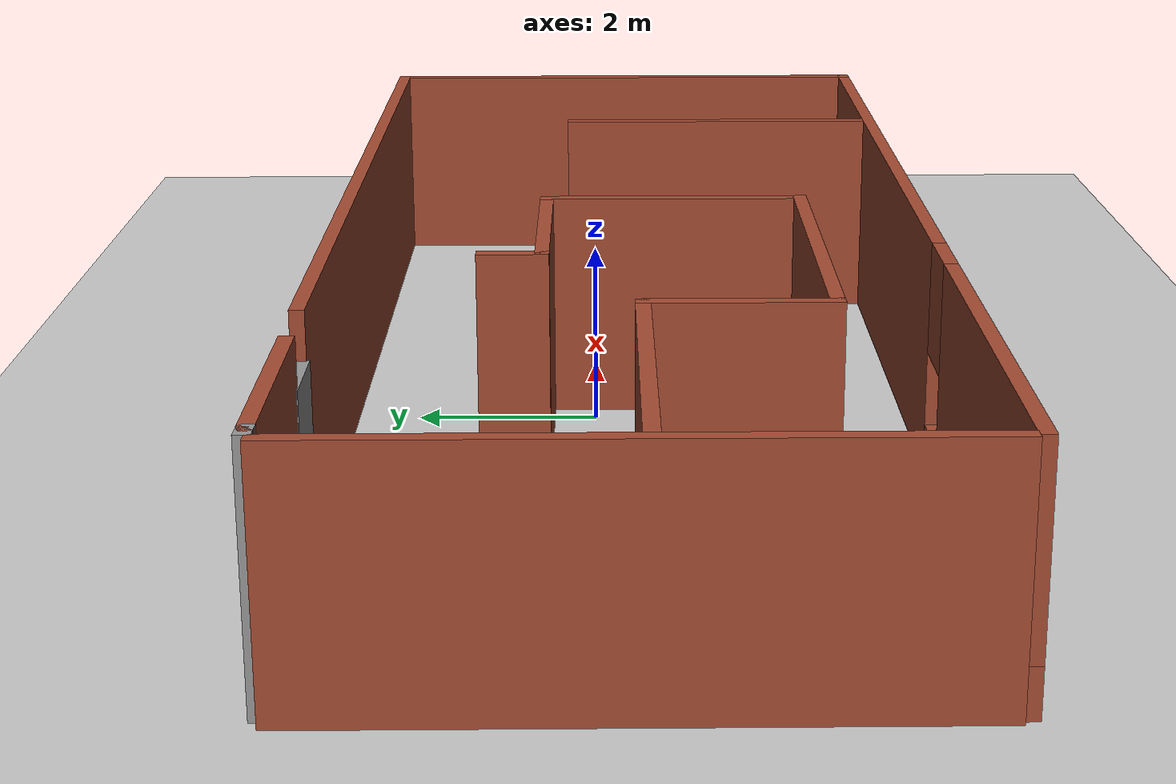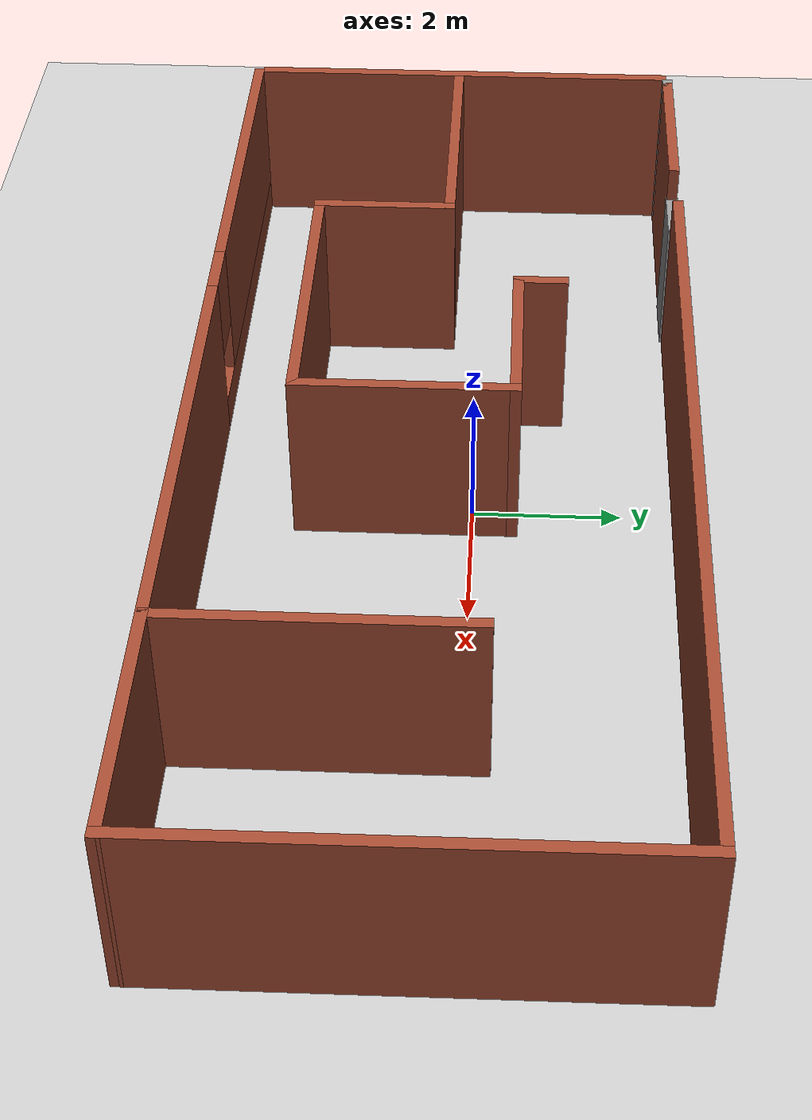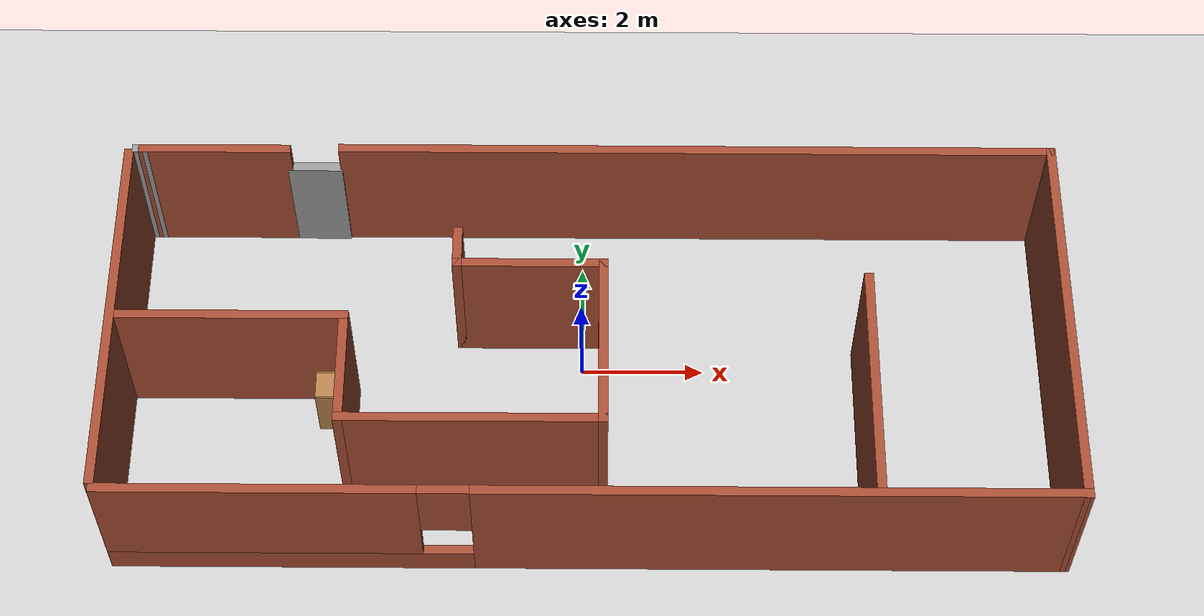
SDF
<sdf version="1.6">
 <world name="default">
  <light name="sun" type="directional">
   <pose>0 0 10 0 -0 0</pose>
   <diffuse>0.8 0.8 0.8 1</diffuse>
   <specular>0.2 0.2 0.2 1</specular>
   <attenuation>
    <range>1000</range>
    <constant>0.9</constant>
    <linear>0.01</linear>
    <quadratic>0.001</quadratic>
   </attenuation>
   <direction>-0.5 0.1 -0.9</direction>
  </light>
  <model name="ground_plane">
   <static>1</static>
   <link name="link">
    <collision name="collision">
     <geometry><plane><normal>0 0 1</normal><size>100 100</size></plane></geometry>
     <surface>
      <contact><collide_bitmask>65535</collide_bitmask></contact>
      <friction><ode><mu>100</mu><mu2>50</mu2></ode></friction>
     </surface>
    </collision>
    <visual name="visual">
     <cast_shadows>0</cast_shadows>
     <geometry><plane><normal>0 0 1</normal><size>100 100</size></plane></geometry>
     <material>
      <script><uri>file://media/materials/scripts/gazebo.material</uri><name>Gazebo/Grey</name></script>
     </material>
    </visual>
   </link>
  </model>
  <gravity>0 0 -9.8</gravity>
  <magnetic_field>6e-06 2.3e-05 -4.2e-05</magnetic_field>
  <atmosphere type="adiabatic"/>
  <physics name="default_physics" default="0" type="ode">
   <max_step_size>0.001</max_step_size>
   <real_time_factor>1</real_time_factor>
   <real_time_update_rate>1000</real_time_update_rate>
  </physics>
  <scene><ambient>0.4 0.4 0.4 1</ambient><background>0.7 0.7 0.7 1</background><shadows>1</shadows></scene>
  <spherical_coordinates>
   <surface_model>EARTH_WGS84</surface_model>
   <latitude_deg>0</latitude_deg>
   <longitude_deg>0</longitude_deg>
   <elevation>0</elevation>
   <heading_deg>0</heading_deg>
  </spherical_coordinates>
  <model name="simplebuilding">
   <pose>0.128 -0.40544 0 0 -0 0</pose>
   <link name="Door_0">
    <collision name="Door_0_Collision">
     <geometry><box><size>0.9 0.17 2</size></box></geometry>
     <pose>0 0 1 0 -0 0</pose>
    </collision>
    <visual name="Door_0_Visual">
     <pose>0 0 1 0 -0 0</pose>
     <geometry><box><size>0.9 0.17 2</size></box></geometry>
     <material>
      <script><uri>file://media/materials/scripts/gazebo.material</uri><name>Gazebo/Grey</name></script>
     </material>
    </visual>
    <pose>-4.5614 3.16525 0 0 -0 0</pose>
   </link>
   <link name="Wall_13">
    <collision name="Wall_13_Collision">
     <geometry><box><size>0.25 0.15 2.5</size></box></geometry>
     <pose>0 0 1.25 0 -0 0</pose>
    </collision>
    <visual name="Wall_13_Visual">
     <pose>0 0 1.25 0 -0 0</pose>
     <geometry><box><size>0.25 0.15 2.5</size></box></geometry>
     <material>
      <script><uri>file://media/materials/scripts/gazebo.material</uri><name>Gazebo/Grey</name></script>
      <ambient>1 1 1 1</ambient>
     </material>
     <meta><layer>0</layer></meta>
    </visual>
    <pose>-7.40376 3.16516 0 0 0 -0.001698</pose>
   </link>
   <link name="Wall_17">
    <collision name="Wall_17_Collision">
     <geometry><box><size>6.25 0.15 2.5</size></box></geometry>
     <pose>0 0 1.25 0 -0 0</pose>
    </collision>
    <visual name="Wall_17_Visual">
     <pose>0 0 1.25 0 -0 0</pose>
     <geometry><box><size>6.25 0.15 2.5</size></box></geometry>
     <material>
      <script><uri>file://media/materials/scripts/gazebo.material</uri><name>Gazebo/Bricks</name></script>
      <ambient>1 1 1 1</ambient>
     </material>
     <meta><layer>0</layer></meta>
    </visual>
    <pose>-7.57862 0.026077 0 0 -0 1.5708</pose>
   </link>
   <link name="Wall_19">
    <collision name="Wall_19_Collision">
     <geometry><box><size>3.75 0.15 2.5</size></box></geometry>
     <pose>0 0 1.25 0 -0 0</pose>
    </collision>
    <visual name="Wall_19_Visual">
     <pose>0 0 1.25 0 -0 0</pose>
     <geometry><box><size>3.75 0.15 2.5</size></box></geometry>
     <material>
      <script><uri>file://media/materials/scripts/gazebo.material</uri><name>Gazebo/Bricks</name></script>
      <ambient>1 1 1 1</ambient>
     </material>
     <meta><layer>0</layer></meta>
    </visual>
    <pose>-5.67762 -0.052923 0 0 -0 3.14159</pose>
   </link>
   <link name="Wall_2">
    <collision name="Wall_2_Collision">
     <geometry><box><size>11.747 0.15 2.5</size></box></geometry>
     <pose>0 0 1.25 0 -0 0</pose>
    </collision>
    <visual name="Wall_2_Visual">
     <pose>0 0 1.25 0 -0 0</pose>
     <geometry><box><size>11.747 0.15 2.5</size></box></geometry>
     <material>
      <script><uri>file://media/materials/scripts/gazebo.material</uri><name>Gazebo/Bricks</name></script>
      <ambient>0.760784 0.662745 0.627451 1</ambient>
     </material>
     <meta><layer>0</layer></meta>
    </visual>
    <pose>1.73328 3.17508 0 0 0 -0.001725</pose>
   </link>
   <link name="Wall_21">
    <collision name="Wall_21_Collision">
     <geometry><box><size>2 0.15 2.5</size></box></geometry>
     <pose>0 0 1.25 0 -0 0</pose>
    </collision>
    <visual name="Wall_21_Visual">
     <pose>0 0 1.25 0 -0 0</pose>
     <geometry><box><size>2 0.15 2.5</size></box></geometry>
     <material>
      <script><uri>file://media/materials/scripts/gazebo.material</uri><name>Gazebo/Bricks</name></script>
      <ambient>1 1 1 1</ambient>
     </material>
     <meta><layer>0</layer></meta>
    </visual>
    <pose>-3.87762 -0.977923 0 0 0 -1.5708</pose>
   </link>
   <link name="Wall_22">
    <collision name="Wall_22_Collision">
     <geometry><box><size>4.25 0.15 2.5</size></box></geometry>
     <pose>0 0 1.25 0 -0 0</pose>
    </collision>
    <visual name="Wall_22_Visual">
     <pose>0 0 1.25 0 -0 0</pose>
     <geometry><box><size>4.25 0.15 2.5</size></box></geometry>
     <material>
      <script><uri>file://media/materials/scripts/gazebo.material</uri><name>Gazebo/Bricks</name></script>
      <ambient>1 1 1 1</ambient>
     </material>
     <meta><layer>0</layer></meta>
    </visual>
    <pose>-1.82762 -1.90292 0 0 -0 0</pose>
   </link>
   <link name="Wall_23">
    <collision name="Wall_23_Collision">
     <geometry><box><size>3 0.15 2.5</size></box></geometry>
     <pose>0 0 1.25 0 -0 0</pose>
    </collision>
    <visual name="Wall_23_Visual">
     <pose>0 0 1.25 0 -0 0</pose>
     <geometry><box><size>3 0.15 2.5</size></box></geometry>
     <material>
      <script><uri>file://media/materials/scripts/gazebo.material</uri><name>Gazebo/Bricks</name></script>
      <ambient>1 1 1 1</ambient>
     </material>
     <meta><layer>0</layer></meta>
    </visual>
    <pose>0.222382 -0.477923 0 0 -0 1.5708</pose>
   </link>
   <link name="Wall_24">
    <collision name="Wall_24_Collision">
     <geometry><box><size>2.5 0.15 2.5</size></box></geometry>
     <pose>0 0 1.25 0 -0 0</pose>
    </collision>
    <visual name="Wall_24_Visual">
     <pose>0 0 1.25 0 -0 0</pose>
     <geometry><box><size>2.5 0.15 2.5</size></box></geometry>
     <material>
      <script><uri>file://media/materials/scripts/gazebo.material</uri><name>Gazebo/Bricks</name></script>
      <ambient>1 1 1 1</ambient>
     </material>
     <meta><layer>0</layer></meta>
    </visual>
    <pose>-0.952618 0.947077 0 0 -0 3.14159</pose>
   </link>
   <link name="Wall_25">
    <collision name="Wall_25_Collision">
     <geometry><box><size>0.75 0.15 2.5</size></box></geometry>
     <pose>0 0 1.25 0 -0 0</pose>
    </collision>
    <visual name="Wall_25_Visual">
     <pose>0 0 1.25 0 -0 0</pose>
     <geometry><box><size>0.75 0.15 2.5</size></box></geometry>
     <material>
      <script><uri>file://media/materials/scripts/gazebo.material</uri><name>Gazebo/Bricks</name></script>
      <ambient>1 1 1 1</ambient>
     </material>
     <meta><layer>0</layer></meta>
    </visual>
    <pose>-2.12762 1.24708 0 0 -0 1.5708</pose>
   </link>
   <link name="Wall_27">
    <collision name="Wall_27_Collision">
     <geometry><box><size>4 0.15 2.5</size></box></geometry>
     <pose>0 0 1.25 0 -0 0</pose>
    </collision>
    <visual name="Wall_27_Visual">
     <pose>0 0 1.25 0 -0 0</pose>
     <geometry><box><size>4 0.15 2.5</size></box></geometry>
     <material>
      <script><uri>file://media/materials/scripts/gazebo.material</uri><name>Gazebo/Bricks</name></script>
      <ambient>1 1 1 1</ambient>
     </material>
     <meta><layer>0</layer></meta>
    </visual>
    <pose>4.44938 -1.23392 0 0 0 -1.5708</pose>
   </link>
   <link name="Wall_3">
    <collision name="Wall_3_Collision">
     <geometry><box><size>6.50013 0.15 2.5</size></box></geometry>
     <pose>0 0 1.25 0 -0 0</pose>
    </collision>
    <visual name="Wall_3_Visual">
     <pose>0 0 1.25 0 -0 0</pose>
     <geometry><box><size>6.50013 0.15 2.5</size></box></geometry>
     <material>
      <script><uri>file://media/materials/scripts/gazebo.material</uri><name>Gazebo/Bricks</name></script>
      <ambient>1 1 1 1</ambient>
     </material>
     <meta><layer>0</layer></meta>
    </visual>
    <pose>7.56838 -0.009923 0 0 0 -1.56765</pose>
   </link>
   <link name="Wall_4">
    <pose>0.029882 -3.17492 0 0 -0 3.14027</pose>
    <visual name="Wall_4_Visual_0">
     <pose>-2.89481 0 1.25 0 -0 0</pose>
     <geometry><box><size>9.4571 0.15 2.5</size></box></geometry>
     <material>
      <script><uri>file://media/materials/scripts/gazebo.material</uri><name>Gazebo/Bricks</name></script>
      <ambient>1 1 1 1</ambient>
     </material>
     <meta><layer>0</layer></meta>
    </visual>
    <collision name="Wall_4_Collision_0">
     <geometry><box><size>9.4571 0.15 2.5</size></box></geometry>
     <pose>-2.89481 0 1.25 0 -0 0</pose>
    </collision>
    <visual name="Wall_4_Visual_1">
     <pose>4.72855 0 0.25 0 -0 0</pose>
     <geometry><box><size>5.78962 0.15 0.5</size></box></geometry>
     <material>
      <script><uri>file://media/materials/scripts/gazebo.material</uri><name>Gazebo/Bricks</name></script>
      <ambient>1 1 1 1</ambient>
     </material>
     <meta><layer>0</layer></meta>
    </visual>
    <collision name="Wall_4_Collision_1">
     <geometry><box><size>5.78962 0.15 0.5</size></box></geometry>
     <pose>4.72855 0 0.25 0 -0 0</pose>
    </collision>
    <visual name="Wall_4_Visual_2">
     <pose>5.12855 0 1.5 0 -0 0</pose>
     <geometry><box><size>4.98962 0.15 2</size></box></geometry>
     <material>
      <script><uri>file://media/materials/scripts/gazebo.material</uri><name>Gazebo/Bricks</name></script>
      <ambient>1 1 1 1</ambient>
     </material>
     <meta><layer>0</layer></meta>
    </visual>
    <collision name="Wall_4_Collision_2">
     <geometry><box><size>4.98962 0.15 2</size></box></geometry>
     <pose>5.12855 0 1.5 0 -0 0</pose>
    </collision>
    <visual name="Wall_4_Visual_3">
     <pose>2.23374 0 1.9 0 -0 0</pose>
     <geometry><box><size>0.8 0.15 1.2</size></box></geometry>
     <material>
      <script><uri>file://media/materials/scripts/gazebo.material</uri><name>Gazebo/Bricks</name></script>
      <ambient>1 1 1 1</ambient>
     </material>
     <meta><layer>0</layer></meta>
    </visual>
    <collision name="Wall_4_Collision_3">
     <geometry><box><size>0.8 0.15 1.2</size></box></geometry>
     <pose>2.23374 0 1.9 0 -0 0</pose>
    </collision>
   </link>
   <link name="Wall_9">
    <collision name="Wall_9_Collision">
     <geometry><box><size>2.5 0.15 2.5</size></box></geometry>
     <pose>0 0 1.25 0 -0 0</pose>
    </collision>
    <visual name="Wall_9_Visual">
     <pose>0 0 1.25 0 -0 0</pose>
     <geometry><box><size>2.5 0.15 2.5</size></box></geometry>
     <material>
      <script><uri>file://media/materials/scripts/gazebo.material</uri><name>Gazebo/Bricks</name></script>
      <ambient>1 1 1 1</ambient>
     </material>
     <meta><layer>0</layer></meta>
    </visual>
    <pose>-6.17862 3.16508 0 0 -0 3.14159</pose>
   </link>
   <static>1</static>
  </model>
  <model name="my_ball">
   <link name="link">
    <inertial>
     <mass>1</mass>
     <inertia><ixx>0.1</ixx><ixy>0</ixy><ixz>0</ixz><iyy>0.1</iyy><iyz>0</iyz><izz>0.1</izz></inertia>
    </inertial>
    <visual name="visual">
     <geometry><sphere><radius>0.1</radius></sphere></geometry>
     <material>
      <script><name>Gazebo/Grey</name><uri>file://media/materials/scripts/gazebo.material</uri></script>
      <ambient>1 1 1 1</ambient>
      <diffuse>1 1 1 1</diffuse>
      <specular>1 1 1 1</specular>
      <emissive>1 1 1 1</emissive>
      <shader type="vertex"><normal_map>__default__</normal_map></shader>
     </material>
    </visual>
    <collision name="collision">
     <geometry><sphere><radius>0.1</radius></sphere></geometry>
     <surface>
      <friction>
       <ode><mu>1</mu><mu2>1</mu2><fdir1>0 0 0</fdir1><slip1>0</slip1><slip2>0</slip2></ode>
       <torsional>
        <coefficient>1</coefficient>
        <patch_radius>0</patch_radius>
        <surface_radius>0</surface_radius>
        <use_patch_radius>1</use_patch_radius>
        <ode><slip>0</slip></ode>
       </torsional>
      </friction>
      <bounce><restitution_coefficient>0</restitution_coefficient><threshold>1e+06</threshold></bounce>
      <contact>
       <collide_without_contact>0</collide_without_contact>
       <collide_without_contact_bitmask>1</collide_without_contact_bitmask>
       <collide_bitmask>1</collide_bitmask>
       <ode>
        <soft_cfm>0</soft_cfm>
        <soft_erp>0.2</soft_erp>
        <kp>1e+13</kp>
        <kd>1</kd>
        <max_vel>0.01</max_vel>
        <min_depth>0</min_depth>
       </ode>
       <bullet>
        <split_impulse>1</split_impulse>
        <split_impulse_penetration_threshold>-0.01</split_impulse_penetration_threshold>
        <soft_cfm>0</soft_cfm>
        <soft_erp>0.2</soft_erp>
        <kp>1e+13</kp>
        <kd>1</kd>
       </bullet>
      </contact>
     </surface>
    </collision>
   </link>
   <static>0</static>
   <pose>0.173154 -1.40434 0.1 0 -0.0091 0</pose>
  </model>
  <model name="cabinet">
   <static>1</static>
   <link name="cabinet_bottom_plate">
    <inertial>
     <pose>0 0 -1 0 -0 0</pose>
     <inertia><ixx>2.05</ixx><ixy>0</ixy><ixz>0</ixz><iyy>2.05</iyy><iyz>0</iyz><izz>2.05</izz></inertia>
     <mass>25</mass>
    </inertial>
    <collision name="cabinet_bottom_plate_geom">
     <pose>0 0 0.01 0 -0 0</pose>
     <geometry><box><size>0.45 0.45 0.02</size></box></geometry>
    </collision>
    <visual name="cabinet_bottom_plate_geom_visual">
     <pose>0 0 0.01 0 -0 0</pose>
     <geometry><box><size>0.45 0.45 0.02</size></box></geometry>
     <material>
      <script><uri>file://media/materials/scripts/gazebo.material</uri><name>Gazebo/Wood</name></script>
     </material>
    </visual>
    <collision name="cabinet_bottom_plate_geom_cabinet_back_plate">
     <pose>0.235 0 0.51 0 -0 0</pose>
     <geometry><box><size>0.02 0.45 1.02</size></box></geometry>
    </collision>
    <visual name="cabinet_bottom_plate_geom_cabinet_back_plate_visual">
     <pose>0.235 0 0.51 0 -0 0</pose>
     <geometry><box><size>0.02 0.45 1.02</size></box></geometry>
     <material>
      <script><uri>file://media/materials/scripts/gazebo.material</uri><name>Gazebo/Wood</name></script>
     </material>
    </visual>
    <collision name="cabinet_bottom_plate_geom_cabinet_left_plate">
     <pose>0 0.235 0.51 0 -0 0</pose>
     <geometry><box><size>0.45 0.02 1.02</size></box></geometry>
    </collision>
    <visual name="cabinet_bottom_plate_geom_cabinet_left_plate_visual">
     <pose>0 0.235 0.51 0 -0 0</pose>
     <geometry><box><size>0.45 0.02 1.02</size></box></geometry>
     <material>
      <script><uri>file://media/materials/scripts/gazebo.material</uri><name>Gazebo/Wood</name></script>
     </material>
    </visual>
    <collision name="cabinet_bottom_plate_geom_cabinet_middle_plate">
     <pose>0 0 0.51 0 -0 0</pose>
     <geometry><box><size>0.45 0.45 0.02</size></box></geometry>
    </collision>
    <visual name="cabinet_bottom_plate_geom_cabinet_middle_plate_visual">
     <pose>0 0 0.51 0 -0 0</pose>
     <geometry><box><size>0.45 0.45 0.02</size></box></geometry>
     <material>
      <script><uri>file://media/materials/scripts/gazebo.material</uri><name>Gazebo/Wood</name></script>
     </material>
    </visual>
    <collision name="cabinet_bottom_plate_geom_cabinet_right_plate">
     <pose>0 -0.235 0.51 0 -0 0</pose>
     <geometry><box><size>0.45 0.02 1.02</size></box></geometry>
    </collision>
    <visual name="cabinet_bottom_plate_geom_cabinet_right_plate_visual">
     <pose>0 -0.235 0.51 0 -0 0</pose>
     <geometry><box><size>0.45 0.02 1.02</size></box></geometry>
     <material>
      <script><uri>file://media/materials/scripts/gazebo.material</uri><name>Gazebo/Wood</name></script>
     </material>
    </visual>
    <collision name="cabinet_bottom_plate_geom_cabinet_top_plate">
     <pose>0 0 1.01 0 -0 0</pose>
     <geometry><box><size>0.45 0.45 0.02</size></box></geometry>
    </collision>
    <visual name="cabinet_bottom_plate_geom_cabinet_top_plate_visual">
     <pose>0 0 1.01 0 -0 0</pose>
     <geometry><box><size>0.45 0.45 0.02</size></box></geometry>
     <material>
      <script><uri>file://media/materials/scripts/gazebo.material</uri><name>Gazebo/Wood</name></script>
     </material>
    </visual>
   </link>
   <pose>-4.07436 -0.866038 0 0 -0 0</pose>
  </model>
 </world>
</sdf>
